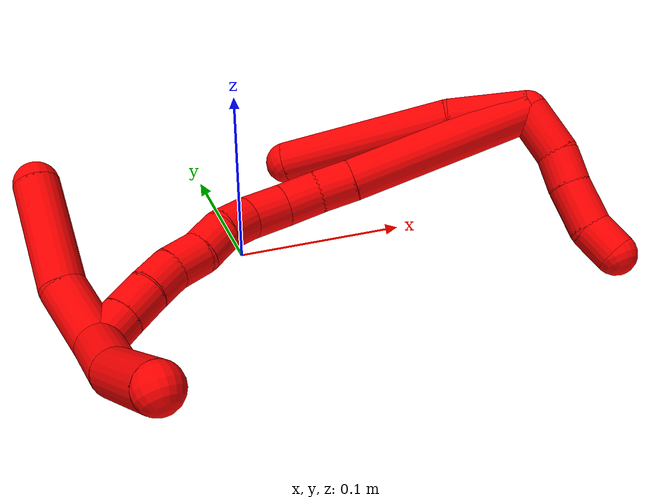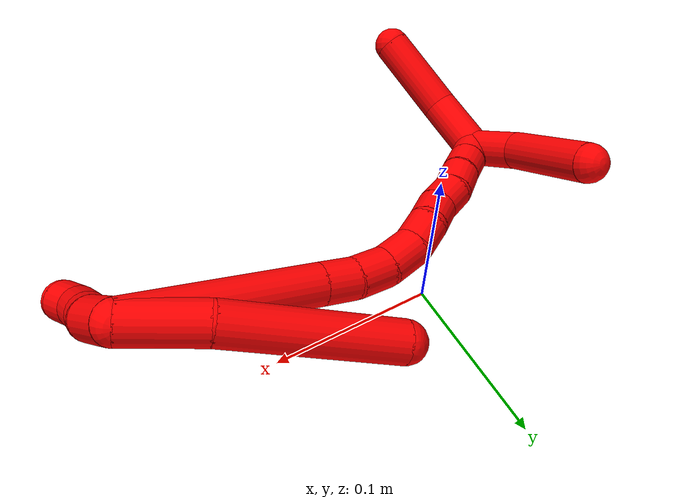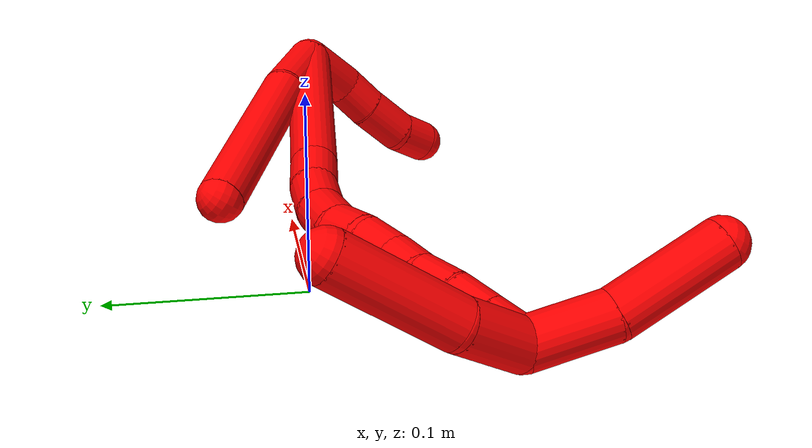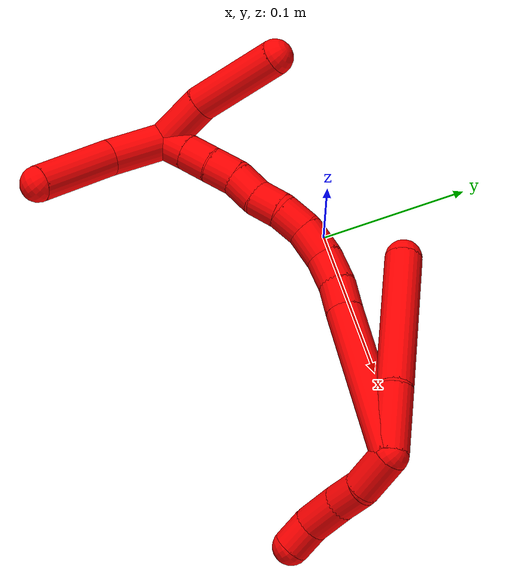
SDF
<sdf version="1.7">
 <world name="default">
  <model name="2">
   <static>0</static>
   <link name="2">
    <collision name="collision-cylinder-e_1_2_8">
     <pose>-0.013235 0.017603 0.007854 -1.15111 -0.601692 0.397309</pose>
     <geometry><cylinder><radius>0.0125</radius><length>0.046764</length></cylinder></geometry>
     <surface>
      <friction><ode><mu>1.16</mu><mu2>1.16</mu2><slip1>0</slip1><slip2>0</slip2></ode></friction>
      <contact><ode><kp>1e+06</kp><kd>1</kd><max_vel>0</max_vel><min_depth>0.001</min_depth></ode></contact>
     </surface>
    </collision>
    <visual name="visual-cylinder-e_1_2_8">
     <pose>-0.013235 0.017603 0.007854 -1.15111 -0.601692 0.397309</pose>
     <geometry><cylinder><radius>0.0125</radius><length>0.046764</length></cylinder></geometry>
     <material><ambient>1 0 0 1</ambient></material>
    </visual>
    <collision name="collision-cylinder-e_2_8_6">
     <pose>-0.051293 0.078914 0.027449 -1.30839 -0.50168 0.388044</pose>
     <geometry><cylinder><radius>0.0125</radius><length>0.103236</length></cylinder></geometry>
     <surface>
      <friction><ode><mu>1.16</mu><mu2>1.16</mu2><slip1>0</slip1><slip2>0</slip2></ode></friction>
      <contact><ode><kp>1e+06</kp><kd>1</kd><max_vel>0</max_vel><min_depth>0.001</min_depth></ode></contact>
     </surface>
    </collision>
    <visual name="visual-cylinder-e_2_8_6">
     <pose>-0.051293 0.078914 0.027449 -1.30839 -0.50168 0.388044</pose>
     <geometry><cylinder><radius>0.0125</radius><length>0.103236</length></cylinder></geometry>
     <material><ambient>1 0 0 1</ambient></material>
    </visual>
    <collision name="collision-cylinder-e_1_2_9">
     <pose>0.003692 -0.000373 -0.015005 3.11673 0.241167 2.93708</pose>
     <geometry><cylinder><radius>0.0125</radius><length>0.030914</length></cylinder></geometry>
     <surface>
      <friction><ode><mu>1.16</mu><mu2>1.16</mu2><slip1>0</slip1><slip2>0</slip2></ode></friction>
      <contact><ode><kp>1e+06</kp><kd>1</kd><max_vel>0</max_vel><min_depth>0.001</min_depth></ode></contact>
     </surface>
    </collision>
    <visual name="visual-cylinder-e_1_2_9">
     <pose>0.003692 -0.000373 -0.015005 3.11673 0.241167 2.93708</pose>
     <geometry><cylinder><radius>0.0125</radius><length>0.030914</length></cylinder></geometry>
     <material><ambient>1 0 0 1</ambient></material>
    </visual>
    <collision name="collision-cylinder-e_2_9_10">
     <pose>0.007902 0.000997 -0.040324 -2.97412 0.049557 -0.574259</pose>
     <geometry><cylinder><radius>0.0125</radius><length>0.020945</length></cylinder></geometry>
     <surface>
      <friction><ode><mu>1.16</mu><mu2>1.16</mu2><slip1>0</slip1><slip2>0</slip2></ode></friction>
      <contact><ode><kp>1e+06</kp><kd>1</kd><max_vel>0</max_vel><min_depth>0.001</min_depth></ode></contact>
     </surface>
    </collision>
    <visual name="visual-cylinder-e_2_9_10">
     <pose>0.007902 0.000997 -0.040324 -2.97412 0.049557 -0.574259</pose>
     <geometry><cylinder><radius>0.0125</radius><length>0.020945</length></cylinder></geometry>
     <material><ambient>1 0 0 1</ambient></material>
    </visual>
    <collision name="collision-cylinder-e_3_10_11">
     <pose>0.009491 0.00364 -0.064436 -3.07651 0.077221 -1.74118</pose>
     <geometry><cylinder><radius>0.0125</radius><length>0.027739</length></cylinder></geometry>
     <surface>
      <friction><ode><mu>1.16</mu><mu2>1.16</mu2><slip1>0</slip1><slip2>0</slip2></ode></friction>
      <contact><ode><kp>1e+06</kp><kd>1</kd><max_vel>0</max_vel><min_depth>0.001</min_depth></ode></contact>
     </surface>
    </collision>
    <visual name="visual-cylinder-e_3_10_11">
     <pose>0.009491 0.00364 -0.064436 -3.07651 0.077221 -1.74118</pose>
     <geometry><cylinder><radius>0.0125</radius><length>0.027739</length></cylinder></geometry>
     <material><ambient>1 0 0 1</ambient></material>
    </visual>
    <collision name="collision-cylinder-e_4_11_5">
     <pose>0.012473 0.002321 -0.088006 2.91832 0.188547 1.40139</pose>
     <geometry><cylinder><radius>0.0125</radius><length>0.020402</length></cylinder></geometry>
     <surface>
      <friction><ode><mu>1.16</mu><mu2>1.16</mu2><slip1>0</slip1><slip2>0</slip2></ode></friction>
      <contact><ode><kp>1e+06</kp><kd>1</kd><max_vel>0</max_vel><min_depth>0.001</min_depth></ode></contact>
     </surface>
    </collision>
    <visual name="visual-cylinder-e_4_11_5">
     <pose>0.012473 0.002321 -0.088006 2.91832 0.188547 1.40139</pose>
     <geometry><cylinder><radius>0.0125</radius><length>0.020402</length></cylinder></geometry>
     <material><ambient>1 0 0 1</ambient></material>
    </visual>
    <collision name="collision-cylinder-e_1_2_12">
     <pose>-0.038375 0.041051 0.000108 -1.56818 -0.751714 0.749925</pose>
     <geometry><cylinder><radius>0.0125</radius><length>0.112389</length></cylinder></geometry>
     <surface>
      <friction><ode><mu>1.16</mu><mu2>1.16</mu2><slip1>0</slip1><slip2>0</slip2></ode></friction>
      <contact><ode><kp>1e+06</kp><kd>1</kd><max_vel>0</max_vel><min_depth>0.001</min_depth></ode></contact>
     </surface>
    </collision>
    <visual name="visual-cylinder-e_1_2_12">
     <pose>-0.038375 0.041051 0.000108 -1.56818 -0.751714 0.749925</pose>
     <geometry><cylinder><radius>0.0125</radius><length>0.112389</length></cylinder></geometry>
     <material><ambient>1 0 0 1</ambient></material>
    </visual>
    <collision name="collision-cylinder-e_2_12_13">
     <pose>-0.084087 0.089872 0.000693 -1.50933 -0.755832 0.714588</pose>
     <geometry><cylinder><radius>0.0125</radius><length>0.021395</length></cylinder></geometry>
     <surface>
      <friction><ode><mu>1.16</mu><mu2>1.16</mu2><slip1>0</slip1><slip2>0</slip2></ode></friction>
      <contact><ode><kp>1e+06</kp><kd>1</kd><max_vel>0</max_vel><min_depth>0.001</min_depth></ode></contact>
     </surface>
    </collision>
    <visual name="visual-cylinder-e_2_12_13">
     <pose>-0.084087 0.089872 0.000693 -1.50933 -0.755832 0.714588</pose>
     <geometry><cylinder><radius>0.0125</radius><length>0.021395</length></cylinder></geometry>
     <material><ambient>1 0 0 1</ambient></material>
    </visual>
    <collision name="collision-cylinder-e_3_13_14">
     <pose>-0.100131 0.104593 0.000552 -1.65964 -0.895123 0.966448</pose>
     <geometry><cylinder><radius>0.0125</radius><length>0.022317</length></cylinder></geometry>
     <surface>
      <friction><ode><mu>1.16</mu><mu2>1.16</mu2><slip1>0</slip1><slip2>0</slip2></ode></friction>
      <contact><ode><kp>1e+06</kp><kd>1</kd><max_vel>0</max_vel><min_depth>0.001</min_depth></ode></contact>
     </surface>
    </collision>
    <visual name="visual-cylinder-e_3_13_14">
     <pose>-0.100131 0.104593 0.000552 -1.65964 -0.895123 0.966448</pose>
     <geometry><cylinder><radius>0.0125</radius><length>0.022317</length></cylinder></geometry>
     <material><ambient>1 0 0 1</ambient></material>
    </visual>
    <collision name="collision-cylinder-e_4_14_15">
     <pose>-0.119457 0.116588 -0.001523 -1.85183 -1.11169 1.38062</pose>
     <geometry><cylinder><radius>0.0125</radius><length>0.023692</length></cylinder></geometry>
     <surface>
      <friction><ode><mu>1.16</mu><mu2>1.16</mu2><slip1>0</slip1><slip2>0</slip2></ode></friction>
      <contact><ode><kp>1e+06</kp><kd>1</kd><max_vel>0</max_vel><min_depth>0.001</min_depth></ode></contact>
     </surface>
    </collision>
    <visual name="visual-cylinder-e_4_14_15">
     <pose>-0.119457 0.116588 -0.001523 -1.85183 -1.11169 1.38062</pose>
     <geometry><cylinder><radius>0.0125</radius><length>0.023692</length></cylinder></geometry>
     <material><ambient>1 0 0 1</ambient></material>
    </visual>
    <collision name="collision-cylinder-e_5_15_16">
     <pose>-0.139496 0.123669 -0.00597 -2.54358 -1.20393 2.29809</pose>
     <geometry><cylinder><radius>0.0125</radius><length>0.020182</length></cylinder></geometry>
     <surface>
      <friction><ode><mu>1.16</mu><mu2>1.16</mu2><slip1>0</slip1><slip2>0</slip2></ode></friction>
      <contact><ode><kp>1e+06</kp><kd>1</kd><max_vel>0</max_vel><min_depth>0.001</min_depth></ode></contact>
     </surface>
    </collision>
    <visual name="visual-cylinder-e_5_15_16">
     <pose>-0.139496 0.123669 -0.00597 -2.54358 -1.20393 2.29809</pose>
     <geometry><cylinder><radius>0.0125</radius><length>0.020182</length></cylinder></geometry>
     <material><ambient>1 0 0 1</ambient></material>
    </visual>
    <collision name="collision-cylinder-e_6_16_17">
     <pose>-0.156944 0.128634 -0.014161 -2.62882 -0.931679 2.18027</pose>
     <geometry><cylinder><radius>0.0125</radius><length>0.020008</length></cylinder></geometry>
     <surface>
      <friction><ode><mu>1.16</mu><mu2>1.16</mu2><slip1>0</slip1><slip2>0</slip2></ode></friction>
      <contact><ode><kp>1e+06</kp><kd>1</kd><max_vel>0</max_vel><min_depth>0.001</min_depth></ode></contact>
     </surface>
    </collision>
    <visual name="visual-cylinder-e_6_16_17">
     <pose>-0.156944 0.128634 -0.014161 -2.62882 -0.931679 2.18027</pose>
     <geometry><cylinder><radius>0.0125</radius><length>0.020008</length></cylinder></geometry>
     <material><ambient>1 0 0 1</ambient></material>
    </visual>
    <collision name="collision-cylinder-e_7_17_18">
     <pose>-0.173828 0.135141 -0.022336 -2.26425 -1.08681 1.8209</pose>
     <geometry><cylinder><radius>0.0125</radius><length>0.020006</length></cylinder></geometry>
     <surface>
      <friction><ode><mu>1.16</mu><mu2>1.16</mu2><slip1>0</slip1><slip2>0</slip2></ode></friction>
      <contact><ode><kp>1e+06</kp><kd>1</kd><max_vel>0</max_vel><min_depth>0.001</min_depth></ode></contact>
     </surface>
    </collision>
    <visual name="visual-cylinder-e_7_17_18">
     <pose>-0.173828 0.135141 -0.022336 -2.26425 -1.08681 1.8209</pose>
     <geometry><cylinder><radius>0.0125</radius><length>0.020006</length></cylinder></geometry>
     <material><ambient>1 0 0 1</ambient></material>
    </visual>
    <collision name="collision-cylinder-e_8_18_19">
     <pose>-0.19099 0.140941 -0.030414 -2.73122 -0.980679 2.39813</pose>
     <geometry><cylinder><radius>0.0125</radius><length>0.02</length></cylinder></geometry>
     <surface>
      <friction><ode><mu>1.16</mu><mu2>1.16</mu2><slip1>0</slip1><slip2>0</slip2></ode></friction>
      <contact><ode><kp>1e+06</kp><kd>1</kd><max_vel>0</max_vel><min_depth>0.001</min_depth></ode></contact>
     </surface>
    </collision>
    <visual name="visual-cylinder-e_8_18_19">
     <pose>-0.19099 0.140941 -0.030414 -2.73122 -0.980679 2.39813</pose>
     <geometry><cylinder><radius>0.0125</radius><length>0.02</length></cylinder></geometry>
     <material><ambient>1 0 0 1</ambient></material>
    </visual>
    <collision name="collision-cylinder-e_9_19_20">
     <pose>-0.207152 0.146287 -0.040864 -2.61249 -0.902907 2.12254</pose>
     <geometry><cylinder><radius>0.0125</radius><length>0.020004</length></cylinder></geometry>
     <surface>
      <friction><ode><mu>1.16</mu><mu2>1.16</mu2><slip1>0</slip1><slip2>0</slip2></ode></friction>
      <contact><ode><kp>1e+06</kp><kd>1</kd><max_vel>0</max_vel><min_depth>0.001</min_depth></ode></contact>
     </surface>
    </collision>
    <visual name="visual-cylinder-e_9_19_20">
     <pose>-0.207152 0.146287 -0.040864 -2.61249 -0.902907 2.12254</pose>
     <geometry><cylinder><radius>0.0125</radius><length>0.020004</length></cylinder></geometry>
     <material><ambient>1 0 0 1</ambient></material>
    </visual>
    <collision name="collision-cylinder-e_10_20_1">
     <pose>-0.22276 0.152468 -0.051744 -2.6372 -0.887051 2.14763</pose>
     <geometry><cylinder><radius>0.0125</radius><length>0.020008</length></cylinder></geometry>
     <surface>
      <friction><ode><mu>1.16</mu><mu2>1.16</mu2><slip1>0</slip1><slip2>0</slip2></ode></friction>
      <contact><ode><kp>1e+06</kp><kd>1</kd><max_vel>0</max_vel><min_depth>0.001</min_depth></ode></contact>
     </surface>
    </collision>
    <visual name="visual-cylinder-e_10_20_1">
     <pose>-0.22276 0.152468 -0.051744 -2.6372 -0.887051 2.14763</pose>
     <geometry><cylinder><radius>0.0125</radius><length>0.020008</length></cylinder></geometry>
     <material><ambient>1 0 0 1</ambient></material>
    </visual>
    <collision name="collision-cylinder-e_1_1_21">
     <pose>-0.238713 0.142151 -0.070947 2.36726 -0.404962 -0.932863</pose>
     <geometry><cylinder><radius>0.0125</radius><length>0.04161</length></cylinder></geometry>
     <surface>
      <friction><ode><mu>1.16</mu><mu2>1.16</mu2><slip1>0</slip1><slip2>0</slip2></ode></friction>
      <contact><ode><kp>1e+06</kp><kd>1</kd><max_vel>0</max_vel><min_depth>0.001</min_depth></ode></contact>
     </surface>
    </collision>
    <visual name="visual-cylinder-e_1_1_21">
     <pose>-0.238713 0.142151 -0.070947 2.36726 -0.404962 -0.932863</pose>
     <geometry><cylinder><radius>0.0125</radius><length>0.04161</length></cylinder></geometry>
     <material><ambient>1 0 0 1</ambient></material>
    </visual>
    <collision name="collision-cylinder-e_2_21_4">
     <pose>-0.256509 0.105063 -0.098678 2.10595 -0.335034 -0.577109</pose>
     <geometry><cylinder><radius>0.0125</radius><length>0.05839</length></cylinder></geometry>
     <surface>
      <friction><ode><mu>1.16</mu><mu2>1.16</mu2><slip1>0</slip1><slip2>0</slip2></ode></friction>
      <contact><ode><kp>1e+06</kp><kd>1</kd><max_vel>0</max_vel><min_depth>0.001</min_depth></ode></contact>
     </surface>
    </collision>
    <visual name="visual-cylinder-e_2_21_4">
     <pose>-0.256509 0.105063 -0.098678 2.10595 -0.335034 -0.577109</pose>
     <geometry><cylinder><radius>0.0125</radius><length>0.05839</length></cylinder></geometry>
     <material><ambient>1 0 0 1</ambient></material>
    </visual>
    <collision name="collision-cylinder-e_1_1_22">
     <pose>-0.232787 0.158844 -0.039457 -0.184297 -0.124677 0.011536</pose>
     <geometry><cylinder><radius>0.0125</radius><length>0.036537</length></cylinder></geometry>
     <surface>
      <friction><ode><mu>1.16</mu><mu2>1.16</mu2><slip1>0</slip1><slip2>0</slip2></ode></friction>
      <contact><ode><kp>1e+06</kp><kd>1</kd><max_vel>0</max_vel><min_depth>0.001</min_depth></ode></contact>
     </surface>
    </collision>
    <visual name="visual-cylinder-e_1_1_22">
     <pose>-0.232787 0.158844 -0.039457 -0.184297 -0.124677 0.011536</pose>
     <geometry><cylinder><radius>0.0125</radius><length>0.036537</length></cylinder></geometry>
     <material><ambient>1 0 0 1</ambient></material>
    </visual>
    <collision name="collision-cylinder-e_2_22_3">
     <pose>-0.232372 0.162539 0.009978 -0.011794 0.084798 -0.0005</pose>
     <geometry><cylinder><radius>0.0125</radius><length>0.063463</length></cylinder></geometry>
     <surface>
      <friction><ode><mu>1.16</mu><mu2>1.16</mu2><slip1>0</slip1><slip2>0</slip2></ode></friction>
      <contact><ode><kp>1e+06</kp><kd>1</kd><max_vel>0</max_vel><min_depth>0.001</min_depth></ode></contact>
     </surface>
    </collision>
    <visual name="visual-cylinder-e_2_22_3">
     <pose>-0.232372 0.162539 0.009978 -0.011794 0.084798 -0.0005</pose>
     <geometry><cylinder><radius>0.0125</radius><length>0.063463</length></cylinder></geometry>
     <material><ambient>1 0 0 1</ambient></material>
    </visual>
    <collision name="collision-sphere-3">
     <pose>-0.229684 0.162912 0.041594 0 -0 0</pose>
     <geometry><sphere><radius>0.0125</radius></sphere></geometry>
     <surface>
      <friction><ode><mu>1.16</mu><mu2>1.16</mu2><slip1>0</slip1><slip2>0</slip2></ode></friction>
      <contact><ode><kp>1e+06</kp><kd>1</kd><max_vel>0</max_vel><min_depth>0.001</min_depth></ode></contact>
     </surface>
    </collision>
    <visual name="visual-sphere-3">
     <pose>-0.229684 0.162912 0.041594 0 -0 0</pose>
     <geometry><sphere><radius>0.0125</radius></sphere></geometry>
     <material><ambient>1 0 0 1</ambient></material>
    </visual>
    <collision name="collision-sphere-22">
     <pose>-0.235059 0.162166 -0.021637 0 -0 0</pose>
     <geometry><sphere><radius>0.0125</radius></sphere></geometry>
     <surface>
      <friction><ode><mu>1.16</mu><mu2>1.16</mu2><slip1>0</slip1><slip2>0</slip2></ode></friction>
      <contact><ode><kp>1e+06</kp><kd>1</kd><max_vel>0</max_vel><min_depth>0.001</min_depth></ode></contact>
     </surface>
    </collision>
    <visual name="visual-sphere-22">
     <pose>-0.235059 0.162166 -0.021637 0 -0 0</pose>
     <geometry><sphere><radius>0.0125</radius></sphere></geometry>
     <material><ambient>1 0 0 1</ambient></material>
    </visual>
    <collision name="collision-sphere-4">
     <pose>-0.266108 0.081346 -0.112739 0 -0 0</pose>
     <geometry><sphere><radius>0.0125</radius></sphere></geometry>
     <surface>
      <friction><ode><mu>1.16</mu><mu2>1.16</mu2><slip1>0</slip1><slip2>0</slip2></ode></friction>
      <contact><ode><kp>1e+06</kp><kd>1</kd><max_vel>0</max_vel><min_depth>0.001</min_depth></ode></contact>
     </surface>
    </collision>
    <visual name="visual-sphere-4">
     <pose>-0.266108 0.081346 -0.112739 0 -0 0</pose>
     <geometry><sphere><radius>0.0125</radius></sphere></geometry>
     <material><ambient>1 0 0 1</ambient></material>
    </visual>
    <collision name="collision-sphere-21">
     <pose>-0.246909 0.12878 -0.084617 0 -0 0</pose>
     <geometry><sphere><radius>0.0125</radius></sphere></geometry>
     <surface>
      <friction><ode><mu>1.16</mu><mu2>1.16</mu2><slip1>0</slip1><slip2>0</slip2></ode></friction>
      <contact><ode><kp>1e+06</kp><kd>1</kd><max_vel>0</max_vel><min_depth>0.001</min_depth></ode></contact>
     </surface>
    </collision>
    <visual name="visual-sphere-21">
     <pose>-0.246909 0.12878 -0.084617 0 -0 0</pose>
     <geometry><sphere><radius>0.0125</radius></sphere></geometry>
     <material><ambient>1 0 0 1</ambient></material>
    </visual>
    <collision name="collision-sphere-1">
     <pose>-0.230516 0.155522 -0.057276 0 -0 0</pose>
     <geometry><sphere><radius>0.0125</radius></sphere></geometry>
     <surface>
      <friction><ode><mu>1.16</mu><mu2>1.16</mu2><slip1>0</slip1><slip2>0</slip2></ode></friction>
      <contact><ode><kp>1e+06</kp><kd>1</kd><max_vel>0</max_vel><min_depth>0.001</min_depth></ode></contact>
     </surface>
    </collision>
    <visual name="visual-sphere-1">
     <pose>-0.230516 0.155522 -0.057276 0 -0 0</pose>
     <geometry><sphere><radius>0.0125</radius></sphere></geometry>
     <material><ambient>1 0 0 1</ambient></material>
    </visual>
    <collision name="collision-sphere-11">
     <pose>0.010561 0.004539 -0.078235 0 -0 0</pose>
     <geometry><sphere><radius>0.0125</radius></sphere></geometry>
     <surface>
      <friction><ode><mu>1.16</mu><mu2>1.16</mu2><slip1>0</slip1><slip2>0</slip2></ode></friction>
      <contact><ode><kp>1e+06</kp><kd>1</kd><max_vel>0</max_vel><min_depth>0.001</min_depth></ode></contact>
     </surface>
    </collision>
    <visual name="visual-sphere-11">
     <pose>0.010561 0.004539 -0.078235 0 -0 0</pose>
     <geometry><sphere><radius>0.0125</radius></sphere></geometry>
     <material><ambient>1 0 0 1</ambient></material>
    </visual>
    <collision name="collision-sphere-10">
     <pose>0.008421 0.002741 -0.050637 0 -0 0</pose>
     <geometry><sphere><radius>0.0125</radius></sphere></geometry>
     <surface>
      <friction><ode><mu>1.16</mu><mu2>1.16</mu2><slip1>0</slip1><slip2>0</slip2></ode></friction>
      <contact><ode><kp>1e+06</kp><kd>1</kd><max_vel>0</max_vel><min_depth>0.001</min_depth></ode></contact>
     </surface>
    </collision>
    <visual name="visual-sphere-10">
     <pose>0.008421 0.002741 -0.050637 0 -0 0</pose>
     <geometry><sphere><radius>0.0125</radius></sphere></geometry>
     <material><ambient>1 0 0 1</ambient></material>
    </visual>
    <collision name="collision-sphere-6">
     <pose>-0.076116 0.122622 0.039189 0 -0 0</pose>
     <geometry><sphere><radius>0.0125</radius></sphere></geometry>
     <surface>
      <friction><ode><mu>1.16</mu><mu2>1.16</mu2><slip1>0</slip1><slip2>0</slip2></ode></friction>
      <contact><ode><kp>1e+06</kp><kd>1</kd><max_vel>0</max_vel><min_depth>0.001</min_depth></ode></contact>
     </surface>
    </collision>
    <visual name="visual-sphere-6">
     <pose>-0.076116 0.122622 0.039189 0 -0 0</pose>
     <geometry><sphere><radius>0.0125</radius></sphere></geometry>
     <material><ambient>1 0 0 1</ambient></material>
    </visual>
    <collision name="collision-sphere-9">
     <pose>0.007383 -0.000746 -0.03001 0 -0 0</pose>
     <geometry><sphere><radius>0.0125</radius></sphere></geometry>
     <surface>
      <friction><ode><mu>1.16</mu><mu2>1.16</mu2><slip1>0</slip1><slip2>0</slip2></ode></friction>
      <contact><ode><kp>1e+06</kp><kd>1</kd><max_vel>0</max_vel><min_depth>0.001</min_depth></ode></contact>
     </surface>
    </collision>
    <visual name="visual-sphere-9">
     <pose>0.007383 -0.000746 -0.03001 0 -0 0</pose>
     <geometry><sphere><radius>0.0125</radius></sphere></geometry>
     <material><ambient>1 0 0 1</ambient></material>
    </visual>
    <collision name="collision-sphere-2">
     <geometry><sphere><radius>0.0125</radius></sphere></geometry>
     <surface>
      <friction><ode><mu>1.16</mu><mu2>1.16</mu2><slip1>0</slip1><slip2>0</slip2></ode></friction>
      <contact><ode><kp>1e+06</kp><kd>1</kd><max_vel>0</max_vel><min_depth>0.001</min_depth></ode></contact>
     </surface>
    </collision>
    <visual name="visual-sphere-2">
     <geometry><sphere><radius>0.0125</radius></sphere></geometry>
     <material><ambient>1 0 0 1</ambient></material>
    </visual>
    <collision name="collision-sphere-19">
     <pose>-0.199299 0.143161 -0.035516 0 -0 0</pose>
     <geometry><sphere><radius>0.0125</radius></sphere></geometry>
     <surface>
      <friction><ode><mu>1.16</mu><mu2>1.16</mu2><slip1>0</slip1><slip2>0</slip2></ode></friction>
      <contact><ode><kp>1e+06</kp><kd>1</kd><max_vel>0</max_vel><min_depth>0.001</min_depth></ode></contact>
     </surface>
    </collision>
    <visual name="visual-sphere-19">
     <pose>-0.199299 0.143161 -0.035516 0 -0 0</pose>
     <geometry><sphere><radius>0.0125</radius></sphere></geometry>
     <material><ambient>1 0 0 1</ambient></material>
    </visual>
    <collision name="collision-sphere-8">
     <pose>-0.02647 0.035206 0.015709 0 -0 0</pose>
     <geometry><sphere><radius>0.0125</radius></sphere></geometry>
     <surface>
      <friction><ode><mu>1.16</mu><mu2>1.16</mu2><slip1>0</slip1><slip2>0</slip2></ode></friction>
      <contact><ode><kp>1e+06</kp><kd>1</kd><max_vel>0</max_vel><min_depth>0.001</min_depth></ode></contact>
     </surface>
    </collision>
    <visual name="visual-sphere-8">
     <pose>-0.02647 0.035206 0.015709 0 -0 0</pose>
     <geometry><sphere><radius>0.0125</radius></sphere></geometry>
     <material><ambient>1 0 0 1</ambient></material>
    </visual>
    <collision name="collision-sphere-5">
     <pose>0.014385 0.000102 -0.097777 0 -0 0</pose>
     <geometry><sphere><radius>0.0125</radius></sphere></geometry>
     <surface>
      <friction><ode><mu>1.16</mu><mu2>1.16</mu2><slip1>0</slip1><slip2>0</slip2></ode></friction>
      <contact><ode><kp>1e+06</kp><kd>1</kd><max_vel>0</max_vel><min_depth>0.001</min_depth></ode></contact>
     </surface>
    </collision>
    <visual name="visual-sphere-5">
     <pose>0.014385 0.000102 -0.097777 0 -0 0</pose>
     <geometry><sphere><radius>0.0125</radius></sphere></geometry>
     <material><ambient>1 0 0 1</ambient></material>
    </visual>
    <collision name="collision-sphere-12">
     <pose>-0.076749 0.082102 0.000215 0 -0 0</pose>
     <geometry><sphere><radius>0.0125</radius></sphere></geometry>
     <surface>
      <friction><ode><mu>1.16</mu><mu2>1.16</mu2><slip1>0</slip1><slip2>0</slip2></ode></friction>
      <contact><ode><kp>1e+06</kp><kd>1</kd><max_vel>0</max_vel><min_depth>0.001</min_depth></ode></contact>
     </surface>
    </collision>
    <visual name="visual-sphere-12">
     <pose>-0.076749 0.082102 0.000215 0 -0 0</pose>
     <geometry><sphere><radius>0.0125</radius></sphere></geometry>
     <material><ambient>1 0 0 1</ambient></material>
    </visual>
    <collision name="collision-sphere-13">
     <pose>-0.091424 0.097642 0.001172 0 -0 0</pose>
     <geometry><sphere><radius>0.0125</radius></sphere></geometry>
     <surface>
      <friction><ode><mu>1.16</mu><mu2>1.16</mu2><slip1>0</slip1><slip2>0</slip2></ode></friction>
      <contact><ode><kp>1e+06</kp><kd>1</kd><max_vel>0</max_vel><min_depth>0.001</min_depth></ode></contact>
     </surface>
    </collision>
    <visual name="visual-sphere-13">
     <pose>-0.091424 0.097642 0.001172 0 -0 0</pose>
     <geometry><sphere><radius>0.0125</radius></sphere></geometry>
     <material><ambient>1 0 0 1</ambient></material>
    </visual>
    <collision name="collision-sphere-14">
     <pose>-0.108838 0.111544 -6.7e-05 0 -0 0</pose>
     <geometry><sphere><radius>0.0125</radius></sphere></geometry>
     <surface>
      <friction><ode><mu>1.16</mu><mu2>1.16</mu2><slip1>0</slip1><slip2>0</slip2></ode></friction>
      <contact><ode><kp>1e+06</kp><kd>1</kd><max_vel>0</max_vel><min_depth>0.001</min_depth></ode></contact>
     </surface>
    </collision>
    <visual name="visual-sphere-14">
     <pose>-0.108838 0.111544 -6.7e-05 0 -0 0</pose>
     <geometry><sphere><radius>0.0125</radius></sphere></geometry>
     <material><ambient>1 0 0 1</ambient></material>
    </visual>
    <collision name="collision-sphere-15">
     <pose>-0.130076 0.121631 -0.002979 0 -0 0</pose>
     <geometry><sphere><radius>0.0125</radius></sphere></geometry>
     <surface>
      <friction><ode><mu>1.16</mu><mu2>1.16</mu2><slip1>0</slip1><slip2>0</slip2></ode></friction>
      <contact><ode><kp>1e+06</kp><kd>1</kd><max_vel>0</max_vel><min_depth>0.001</min_depth></ode></contact>
     </surface>
    </collision>
    <visual name="visual-sphere-15">
     <pose>-0.130076 0.121631 -0.002979 0 -0 0</pose>
     <geometry><sphere><radius>0.0125</radius></sphere></geometry>
     <material><ambient>1 0 0 1</ambient></material>
    </visual>
    <collision name="collision-sphere-16">
     <pose>-0.148915 0.125707 -0.008962 0 -0 0</pose>
     <geometry><sphere><radius>0.0125</radius></sphere></geometry>
     <surface>
      <friction><ode><mu>1.16</mu><mu2>1.16</mu2><slip1>0</slip1><slip2>0</slip2></ode></friction>
      <contact><ode><kp>1e+06</kp><kd>1</kd><max_vel>0</max_vel><min_depth>0.001</min_depth></ode></contact>
     </surface>
    </collision>
    <visual name="visual-sphere-16">
     <pose>-0.148915 0.125707 -0.008962 0 -0 0</pose>
     <geometry><sphere><radius>0.0125</radius></sphere></geometry>
     <material><ambient>1 0 0 1</ambient></material>
    </visual>
    <collision name="collision-sphere-17">
     <pose>-0.164974 0.131562 -0.019361 0 -0 0</pose>
     <geometry><sphere><radius>0.0125</radius></sphere></geometry>
     <surface>
      <friction><ode><mu>1.16</mu><mu2>1.16</mu2><slip1>0</slip1><slip2>0</slip2></ode></friction>
      <contact><ode><kp>1e+06</kp><kd>1</kd><max_vel>0</max_vel><min_depth>0.001</min_depth></ode></contact>
     </surface>
    </collision>
    <visual name="visual-sphere-17">
     <pose>-0.164974 0.131562 -0.019361 0 -0 0</pose>
     <geometry><sphere><radius>0.0125</radius></sphere></geometry>
     <material><ambient>1 0 0 1</ambient></material>
    </visual>
    <collision name="collision-sphere-18">
     <pose>-0.182682 0.138721 -0.025311 0 -0 0</pose>
     <geometry><sphere><radius>0.0125</radius></sphere></geometry>
     <surface>
      <friction><ode><mu>1.16</mu><mu2>1.16</mu2><slip1>0</slip1><slip2>0</slip2></ode></friction>
      <contact><ode><kp>1e+06</kp><kd>1</kd><max_vel>0</max_vel><min_depth>0.001</min_depth></ode></contact>
     </surface>
    </collision>
    <visual name="visual-sphere-18">
     <pose>-0.182682 0.138721 -0.025311 0 -0 0</pose>
     <geometry><sphere><radius>0.0125</radius></sphere></geometry>
     <material><ambient>1 0 0 1</ambient></material>
    </visual>
    <collision name="collision-sphere-20">
     <pose>-0.215005 0.149414 -0.046211 0 -0 0</pose>
     <geometry><sphere><radius>0.0125</radius></sphere></geometry>
     <surface>
      <friction><ode><mu>1.16</mu><mu2>1.16</mu2><slip1>0</slip1><slip2>0</slip2></ode></friction>
      <contact><ode><kp>1e+06</kp><kd>1</kd><max_vel>0</max_vel><min_depth>0.001</min_depth></ode></contact>
     </surface>
    </collision>
    <visual name="visual-sphere-20">
     <pose>-0.215005 0.149414 -0.046211 0 -0 0</pose>
     <geometry><sphere><radius>0.0125</radius></sphere></geometry>
     <material><ambient>1 0 0 1</ambient></material>
    </visual>
    <inertial>
     <pose>-0.11508 0.08733 -0.019361 0 -0 0</pose>
     <mass>0.75</mass>
     <inertia>
      <ixx>0.000256</ixx>
      <ixy>0</ixy>
      <ixz>0</ixz>
      <iyy>0.000241</iyy>
      <iyz>0</iyz>
      <izz>-1.7e-05</izz>
     </inertia>
    </inertial>
   </link>
   <pose>0.173526 -0.01893 0.074392 -0.896976 0.37602 0.413505</pose>
  </model>
 </world>
</sdf>
